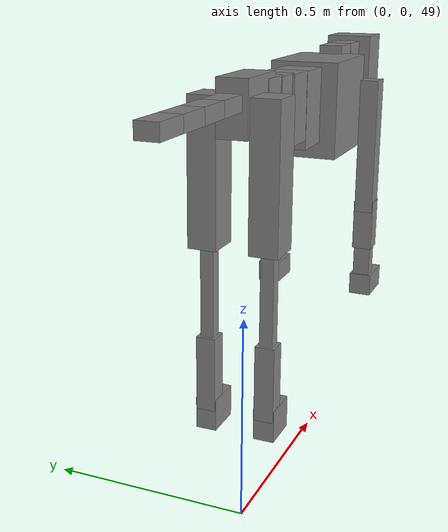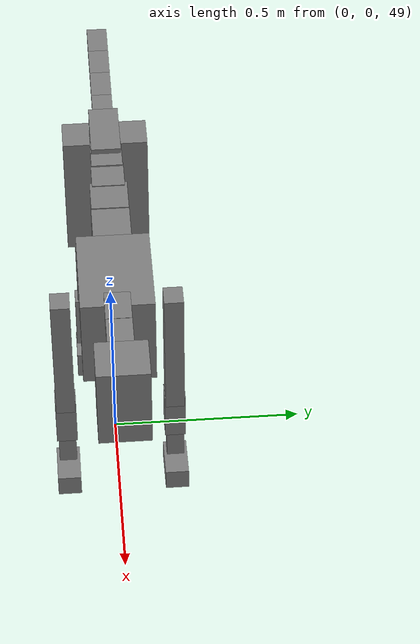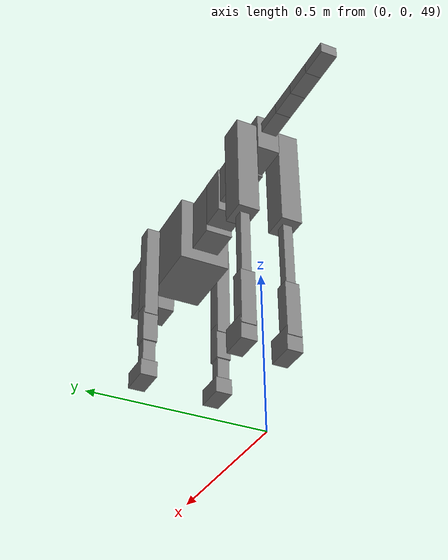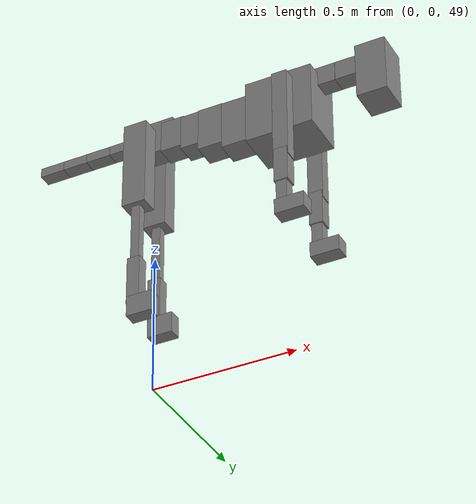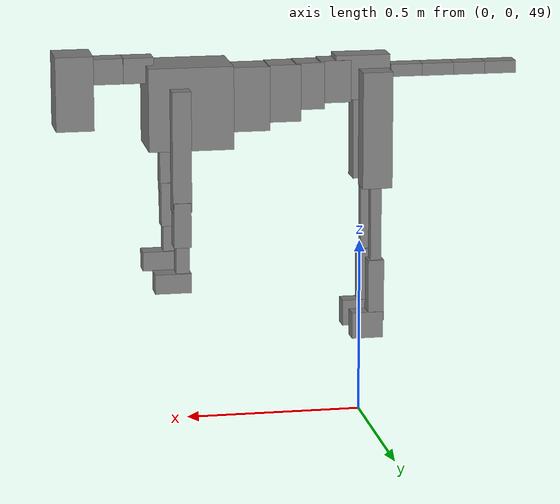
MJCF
<mujoco model="dog">

    <default>
        <joint armature="0.02" stiffness="1" damping="0.2" limited="true"/>
        <geom condim="3" friction="1 0.05 0.05" margin="0.01"/>
        <motor ctrllimited="true" ctrlrange="-1.0 1.0" forcelimited="true" gear="50"/>
    </default>

    <compiler inertiafromgeom="true" angle="radian"/>

    <option timestep="0.016" iterations="50" tolerance="1e-10" solver="Newton" jacobian="dense" cone="pyramidal"/>

    <size nconmax="20000" njmax="60000" nstack="5000000"/>
    <visual>
        <map force="0.1" zfar="30"/>
        <rgba haze="0.15 0.25 0.35 1"/>
        <quality shadowsize="2048"/>
        <global offwidth="800" offheight="800"/>
    </visual>

    <asset>
        <texture type="skybox" builtin="gradient" rgb1="0.3 0.5 0.7" rgb2="0 0 0" width="512" height="512"/>
        <texture name="texplane" type="2d" builtin="checker" rgb1=".2 .3 .4" rgb2=".1 0.15 0.2" width="512" height="512"
                 mark="cross" markrgb=".8 .8 .8"/>
        <texture name="texgeom" type="cube" builtin="flat" mark="cross" width="127" height="1278" rgb1="0.8 0.6 0.4"
                 rgb2="0.8 0.6 0.4" markrgb="1 1 1" random="0.01"/>

        <material name="matplane" reflectance="0.3" texture="texplane" texrepeat="1 1" texuniform="true"/>
        <material name="matgeom" texture="texgeom" texuniform="true" rgba="0.8 0.6 .4 1"/>
    </asset>

    <worldbody>
        <geom name="floor" pos="0 0 0" size="0 0 .25" type="plane" material="matplane" condim="3"/>

        <light directional="false" diffuse=".2 .2 .2" specular="0 0 0" pos="0 0 5" dir="0 0 -1" castshadow="false"/>
        <light mode="targetbodycom" target="torso" directional="false" diffuse=".8 .8 .8" specular="0.3 0.3 0.3"
               pos="0 0 4.0" dir="0 0 -1"/>

        <body name="root" pos="0 0 50">
            <freejoint name="root_1"/>
            <geom type="box" pos="0 0 -0.02" size="0.0774  0.0358  0.063" density="2030"/>

            <body name="spine1" pos="0.054 0 0">
                <joint name="spine1_y" axis="0 1 0" range="0 0.7" limited="true"/>
                <geom type="box" pos="0.02375 0 -0.03" size="0.04375  0.0375  0.05985" density="2030"/>

                <body name="spine2" pos="0.0612 0 0">
                    <joint name="spine2_y" axis="0 1 0" range="-0.15 0.15" limited="true"/>
                    <geom type="box" pos="0.03555  0  -0.04" size="0.04055  0.039  0.06615" density="2030"/>

                    <body name="spine3" pos="0.0730 0 0">
                        <joint name="spine3_y" axis="0 1 0" range="-0.15 0.15" limited="true"/>
                        <geom type="box" pos="0.03555  0  -0.057" size="0.04555  0.0445  0.081" density="2030"/>

                        <body name="spine4" pos="0.0780 0 0">
                            <joint name="spine4_y" axis="0 1 0" range="-0.15 0.15" limited="true"/>
                            <geom type="box" pos="0.05265  0  -0.07" size="0.05265  0.045  0.09135" density="2030"/>

                            <body name="torso" pos="0.1082 0 0">
                                <joint name="torso_y" axis="0 1 0" range="-0.15 0.15" limited="true"/>
                                <geom type="box" pos="0.11925  0  -0.085" size="0.11925  0.085  0.11745"
                                      density="2030"/>

                                <body name="neck1" pos="0.2160  0   0.0180">
                                    <joint name="neck1_y" axis="0 1 0" range="-1.2  -1" limited="true"/>
                                    <geom type="box" pos="0.0423  0  0" size="0.0423  0.03  0.036" density="2325"/>

                                    <body name="neck2" pos="0.0853  0  0">
                                        <joint name="neck2_y" axis="0 1 0" range="0.1  0" limited="true"/>
                                        <geom type="box" pos="0.0423  0  0" size="0.0423  0.03  0.036" density="2325"/>

                                        <body name="head" pos="0.0853  0  0">
                                            <joint name="head_y" axis="0 1 0" range="-0.3  -0.2" limited="true"/>
                                            <geom type="box" pos="0.0531  0  -0.055" size="0.0531  0.06  0.1044"
                                                  density="4030"/>

                                        </body>
                                    </body>
                                </body>

                                <body name="front_shoulder" pos="0.156  0   -0.0480">
                                    <joint name="front_shoulder_y" axis="0 1 0" range="-1 1.5" limited="true"/>
                                    <geom type="box" pos="0 0.13 -0.1433" size="0.0266  0.0227  0.1699" density="1158"/>
                                    <geom type="box" pos="0 -0.13 -0.1433" size="0.0266  0.0227  0.1699"
                                          density="1158"/>

                                    <body name="front_elbow" pos="0  0  -0.2865">
                                        <joint name="front_elbow_y" axis="0 1 0" range="-2 0" limited="true"/>
                                        <geom type="box" pos="0 0.13 -0.0633" size="0.0242  0.0247  0.0633"
                                              density="1081"/>
                                        <geom type="box" pos="0 -0.13 -0.0633" size="0.0242  0.0247  0.0633"
                                              density="1081"/>

                                        <body name="front_wrist" pos="0  0  -0.1265">
                                            <joint name="front_wrist_y" axis="0 1 0" range="-0.2 0" limited="true"/>
                                            <geom type="box" pos="0 0.13 -0.0442" size="0.0188  0.0209  0.0574"
                                                  density="1664"/>
                                            <geom type="box" pos="0 -0.13 -0.0442" size="0.0188  0.0209  0.0574"
                                                  density="1664"/>

                                            <body name="front_finger_end" pos="0  0  -0.0884">
                                                <joint name="front_finger_y" axis="0 1 0" range="-0.4 1"
                                                       limited="true"/>
                                                <geom type="box" pos="0.0278  0.13  -0.0126"
                                                      size="0.0510  0.0278  0.0276" density="1515"/>
                                                <geom type="box" pos="0.0278  -0.13  -0.0126"
                                                      size="0.0510  0.0278  0.0276" density="1515"/>

                                            </body>

                                        </body>
                                    </body>
                                </body>

                            </body>
                        </body>
                    </body>
                </body>
            </body>

            <body name="back_hip" pos="-0.03 0 -0.018">
                <joint name="back_hip_y" axis="0 1 0" range="-1.5 0.3" limited="true"/>
                <geom type="box" pos="0 0.07 -0.1430" size="0.0423  0.0331  0.1658" density="1154"/>
                <geom type="box" pos="0 -0.07 -0.1430" size="0.0423  0.0331  0.1658" density="1154"/>

                <body name="back_knee" pos="0  0  -0.2860">
                    <joint name="back_knee_y" axis="0 1 0" range="0 2.8" limited="true"/>
                    <geom type="box" pos="0 0.07 -0.1222" size="0.0154  0.0152  0.1378" density="1227"/>
                    <geom type="box" pos="0 -0.07 -0.1222" size="0.0154  0.0152  0.1378" density="1227"/>

                    <body name="back_ankle" pos="0  0  -0.2444">
                        <joint name="back_ankle_y" axis="0 1 0" range="-2.2 0" limited="true"/>
                        <geom type="box" pos="0 0.07 -0.0772" size="0.0226  0.0226  0.0884" density="1284"/>
                        <geom type="box" pos="0 -0.07 -0.0772" size="0.0226  0.0226  0.0884" density="1284"/>

                        <body name="back_toe_end" pos="0  0  -0.1543">
                            <joint name="back_toe_y" axis="0 1 0" range="-0.4 1" limited="true"/>
                            <geom type="box" pos="0.0243  0.07  -0.0225" size="0.0446  0.0243  0.0375" density="1515"/>
                            <geom type="box" pos="0.0243  -0.07  -0.0225" size="0.0446  0.0243  0.0375" density="1515"/>

                        </body>
                    </body>
                </body>
            </body>

            <body name="tail1" pos="-0.074 0 -0.006">
                <joint name="tail1_y" axis="0 1 0" range="-0.2 0.2" limited="true"/>
                <geom type="box" pos="-0.0536  0  0" size="0.045  0.025  0.0175" density="1587"/>

                <body name="tail2" pos="-0.09 0 0">
                    <joint name="tail2_y" axis="0 1 0" range="-0.2 0.2" limited="true"/>
                    <geom type="box" pos="-0.0536  0  0" size="0.045  0.025  0.0175" density="1587"/>

                    <body name="tail3" pos="-0.09 0 0">
                        <joint name="tail3_y" axis="0 1 0" range="-0.2 0.2" limited="true"/>
                        <geom type="box" pos="-0.0536  0  0" size="0.045  0.025  0.0175" density="1587"/>

                        <body name="tail4" pos="-0.09 0 0">
                            <joint name="tail4_y" axis="0 1 0" range="-0.2 0.2" limited="true"/>
                            <geom type="box" pos="-0.0536  0  0" size="0.045  0.025  0.0175" density="1587"/>

                        </body>
                    </body>
                </body>
            </body>
        </body>
    </worldbody>

    <actuator>
        <motor joint="spine1_y" forcerange="-150 150     "/>
        <motor joint="spine2_y" forcerange="-150 150     "/>
        <motor joint="spine3_y" forcerange="-150 150     "/>
        <motor joint="spine4_y" forcerange="-150 150     "/>
        <motor joint="torso_y" forcerange="-150 150     "/>
        <motor joint="neck1_y" forcerange="-100 100       "/>
        <motor joint="neck2_y" forcerange="-100 100       "/>
        <motor joint="head_y" forcerange="-150 150       "/>
        <motor joint="front_shoulder_y" forcerange="-131.07 120.32"/>
        <motor joint="front_elbow_y" forcerange="-159.93 119.70"/>
        <motor joint="front_wrist_y" forcerange="-114.61 52.89"/>
        <motor joint="front_finger_y" forcerange="-41.52 66.86"/>
        <motor joint="back_hip_y" forcerange="-361.74 280.22"/>
        <motor joint="back_knee_y" forcerange="-205.45 215.80"/>
        <motor joint="back_angle_y" forcerange="-112.44 149.96"/>
        <motor joint="back_toe_y" forcerange="-44.70 70.01"/>
        <motor joint="tail1_y" forcerange="-50 50     "/>
        <motor joint="tail2_y" forcerange="-50 50     "/>
        <motor joint="tail3_y" forcerange="-50 50     "/>
        <motor joint="tail4_y" forcerange="-50 50     "/>
    </actuator>
</mujoco>
